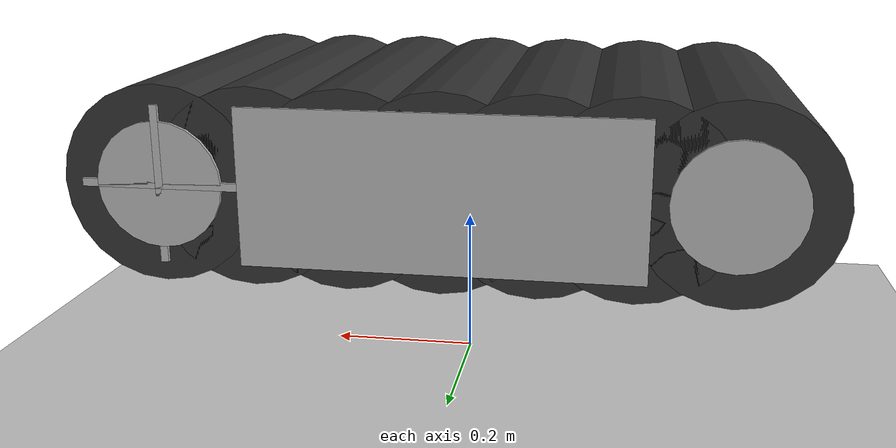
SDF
<?xml version="1.0" ?>
<sdf version="1.6">
    <world name="default">
        <include>
            <uri>model://ground_plane</uri>
        </include>

        <!-- Global light source -->
        <include>
            <uri>model://sun</uri>
        </include>

        <!-- Example track -->
        <include>
            <uri>model://example_track_simple_wheels</uri>
            <pose>0 0 0.3 0 0 0</pose>
        </include>

        <!-- Rigid anchor for the track -->

        <!-- camera angle -->
        <gui fullscreen='0'>
            <camera name='user_camera'>
                <pose>2.0 -1.5 1.0 0.0 0.3 2.45</pose>
                <view_controller>orbit</view_controller>
            </camera>
        </gui>
    </world>
</sdf>

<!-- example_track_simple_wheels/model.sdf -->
<sdf version='1.6'>
  <model name='example_track_simple_wheels'>
    <link name='body'>
      <pose frame=''>0 0 0 0 -0 0</pose>
      <inertial>
        <pose frame=''>-0.058333 0 0 0 -0 0</pose>
        <mass>1.2</mass>
        <inertia>
          <ixx>0.0296633</ixx>
          <ixy>0</ixy>
          <ixz>0</ixz>
          <iyy>0.0452233</iyy>
          <iyz>0</iyz>
          <izz>0.06758</izz>
        </inertia>
      </inertial>
      <collision name='body_collision'>
        <pose frame=''>0 0 0 0 -0 0</pose>
        <geometry>
          <box>
            <size>0.51 0.5 0.2</size>
          </box>
        </geometry>
      </collision>
      <collision name='body_fixed_joint_lump__idler_collision_1'>
        <pose frame=''>-0.35 0 0 1.5708 -0 0</pose>
        <geometry>
          <cylinder>
            <length>0.51</length>
            <radius>0.08</radius>
          </cylinder>
        </geometry>
      </collision>
      <visual name='body_visual'>
        <pose frame=''>0 0 0 0 -0 0</pose>
        <geometry>
          <box>
            <size>0.5 0.51 0.2</size>
          </box>
        </geometry>
      </visual>
      <visual name='body_fixed_joint_lump__idler_visual_1'>
        <pose frame=''>-0.35 0 0 1.5708 -0 0</pose>
        <geometry>
          <cylinder>
            <length>0.51</length>
            <radius>0.08</radius>
          </cylinder>
        </geometry>
      </visual>
    </link>
    <link name='sprocket'>
      <pose frame=''>0.35 0 0 0 -0 0</pose>
      <inertial>
        <pose frame=''>0 0 0 0 -0 0</pose>
        <mass>0.2</mass>
        <inertia>
          <ixx>0.004655</ixx>
          <ixy>0</ixy>
          <ixz>0</ixz>
          <iyy>0.00064</iyy>
          <iyz>0</iyz>
          <izz>0.004655</izz>
        </inertia>
      </inertial>
      <collision name='sprocket_collision'>
        <pose frame=''>0 0 0 1.5708 -0 0</pose>
        <geometry>
          <cylinder>
            <length>0.51</length>
            <radius>0.08</radius>
          </cylinder>
        </geometry>
      </collision>
      <visual name='sprocket_visual'>
        <pose frame=''>0 0 0 1.5708 -0 0</pose>
        <geometry>
          <cylinder>
            <length>0.51</length>
            <radius>0.08</radius>
          </cylinder>
        </geometry>
      </visual>
      <visual name='sprocket_visual_1'>
        <pose frame=''>0 0 0 0 -0 0</pose>
        <geometry>
          <box>
            <size>0.01 0.51 0.2</size>
          </box>
        </geometry>
      </visual>
      <visual name='sprocket_visual_2'>
        <pose frame=''>0 0 0 0 -0 0</pose>
        <geometry>
          <box>
            <size>0.2 0.51 0.01</size>
          </box>
        </geometry>
      </visual>
    </link>
    <joint name='sprocket_axle' type='revolute'>
      <child>sprocket</child>
      <parent>body</parent>
      <axis>
        <xyz>0 1 0</xyz>
        <limit>
          <lower>-1e+16</lower>
          <upper>1e+16</upper>
        </limit>
        <dynamics>
          <spring_reference>0</spring_reference>
          <spring_stiffness>0</spring_stiffness>
        </dynamics>
        <use_parent_model_frame>0</use_parent_model_frame>
      </axis>
    </joint>
    <link name='track_wheel_link0'>
      <pose frame=''>0.35 0 0.125 0 -0 0</pose>
      <inertial>
        <pose frame=''>0 0 -0.125 1.5708 -0 0</pose>
        <mass>0.0571429</mass>
        <inertia>
          <ixx>0.00141369</ixx>
          <ixy>0</ixy>
          <ixz>0</ixz>
          <iyy>0.00141369</iyy>
          <iyz>0</iyz>
          <izz>0.000446429</izz>
        </inertia>
      </inertial>
      <collision name='collision'>
        <pose frame=''>0 0 -0.125 1.5708 -0 0</pose>
        <geometry>
          <cylinder>
            <length>0.5</length>
            <radius>0.125</radius>
          </cylinder>
        </geometry>
        <surface>
          <friction>
            <ode>
              <mu>0.5</mu>
              <mu2>0.5</mu2>
            </ode>
          </friction>
          <contact>
            <ode>
              <min_depth>0.01</min_depth>
            </ode>
          </contact>
        </surface>
      </collision>
      <visual name='visual'>
        <pose frame=''>0 0 -0.125 1.5708 -0 0</pose>
        <geometry>
          <cylinder>
            <length>0.5</length>
            <radius>0.125</radius>
          </cylinder>
        </geometry>
        <material>
          <ambient>0.3 0.1 0.1 1</ambient>
          <diffuse>0.2 0.2 0.2 1</diffuse>
          <specular>0 0 0 1</specular>
          <emissive>0 0 0 1</emissive>
        </material>
      </visual>
    </link>
    <link name='track_wheel_link1'>
      <pose frame=''>0.233333 0 0.125 0 -0 0</pose>
      <inertial>
        <pose frame=''>0 0 -0.125 1.5708 -0 0</pose>
        <mass>0.0571429</mass>
        <inertia>
          <ixx>0.00141369</ixx>
          <ixy>0</ixy>
          <ixz>0</ixz>
          <iyy>0.00141369</iyy>
          <iyz>0</iyz>
          <izz>0.000446429</izz>
        </inertia>
      </inertial>
      <collision name='collision'>
        <pose frame=''>0 0 -0.125 1.5708 -0 0</pose>
        <geometry>
          <cylinder>
            <length>0.5</length>
            <radius>0.125</radius>
          </cylinder>
        </geometry>
        <surface>
          <friction>
            <ode>
              <mu>0.5</mu>
              <mu2>0.5</mu2>
            </ode>
          </friction>
          <contact>
            <ode>
              <min_depth>0.01</min_depth>
            </ode>
          </contact>
        </surface>
      </collision>
      <visual name='visual'>
        <pose frame=''>0 0 -0.125 1.5708 -0 0</pose>
        <geometry>
          <cylinder>
            <length>0.5</length>
            <radius>0.125</radius>
          </cylinder>
        </geometry>
        <material>
          <ambient>0.3 0.1 0.1 1</ambient>
          <diffuse>0.2 0.2 0.2 1</diffuse>
          <specular>0 0 0 1</specular>
          <emissive>0 0 0 1</emissive>
        </material>
      </visual>
    </link>
    <link name='track_wheel_link2'>
      <pose frame=''>0.116667 0 0.125 0 -0 0</pose>
      <inertial>
        <pose frame=''>0 0 -0.125 1.5708 -0 0</pose>
        <mass>0.0571429</mass>
        <inertia>
          <ixx>0.00141369</ixx>
          <ixy>0</ixy>
          <ixz>0</ixz>
          <iyy>0.00141369</iyy>
          <iyz>0</iyz>
          <izz>0.000446429</izz>
        </inertia>
      </inertial>
      <collision name='collision'>
        <pose frame=''>0 0 -0.125 1.5708 -0 0</pose>
        <geometry>
          <cylinder>
            <length>0.5</length>
            <radius>0.125</radius>
          </cylinder>
        </geometry>
        <surface>
          <friction>
            <ode>
              <mu>0.5</mu>
              <mu2>0.5</mu2>
            </ode>
          </friction>
          <contact>
            <ode>
              <min_depth>0.01</min_depth>
            </ode>
          </contact>
        </surface>
      </collision>
      <visual name='visual'>
        <pose frame=''>0 0 -0.125 1.5708 -0 0</pose>
        <geometry>
          <cylinder>
            <length>0.5</length>
            <radius>0.125</radius>
          </cylinder>
        </geometry>
        <material>
          <ambient>0.3 0.1 0.1 1</ambient>
          <diffuse>0.2 0.2 0.2 1</diffuse>
          <specular>0 0 0 1</specular>
          <emissive>0 0 0 1</emissive>
        </material>
      </visual>
    </link>
    <link name='track_wheel_link3'>
      <pose frame=''>0 0 0.125 0 -0 0</pose>
      <inertial>
        <pose frame=''>0 0 -0.125 1.5708 -0 0</pose>
        <mass>0.0571429</mass>
        <inertia>
          <ixx>0.00141369</ixx>
          <ixy>0</ixy>
          <ixz>0</ixz>
          <iyy>0.00141369</iyy>
          <iyz>0</iyz>
          <izz>0.000446429</izz>
        </inertia>
      </inertial>
      <collision name='collision'>
        <pose frame=''>0 0 -0.125 1.5708 -0 0</pose>
        <geometry>
          <cylinder>
            <length>0.5</length>
            <radius>0.125</radius>
          </cylinder>
        </geometry>
        <surface>
          <friction>
            <ode>
              <mu>0.5</mu>
              <mu2>0.5</mu2>
            </ode>
          </friction>
          <contact>
            <ode>
              <min_depth>0.01</min_depth>
            </ode>
          </contact>
        </surface>
      </collision>
      <visual name='visual'>
        <pose frame=''>0 0 -0.125 1.5708 -0 0</pose>
        <geometry>
          <cylinder>
            <length>0.5</length>
            <radius>0.125</radius>
          </cylinder>
        </geometry>
        <material>
          <ambient>0.3 0.1 0.1 1</ambient>
          <diffuse>0.2 0.2 0.2 1</diffuse>
          <specular>0 0 0 1</specular>
          <emissive>0 0 0 1</emissive>
        </material>
      </visual>
    </link>
    <link name='track_wheel_link4'>
      <pose frame=''>-0.116667 0 0.125 0 -0 0</pose>
      <inertial>
        <pose frame=''>0 0 -0.125 1.5708 -0 0</pose>
        <mass>0.0571429</mass>
        <inertia>
          <ixx>0.00141369</ixx>
          <ixy>0</ixy>
          <ixz>0</ixz>
          <iyy>0.00141369</iyy>
          <iyz>0</iyz>
          <izz>0.000446429</izz>
        </inertia>
      </inertial>
      <collision name='collision'>
        <pose frame=''>0 0 -0.125 1.5708 -0 0</pose>
        <geometry>
          <cylinder>
            <length>0.5</length>
            <radius>0.125</radius>
          </cylinder>
        </geometry>
        <surface>
          <friction>
            <ode>
              <mu>0.5</mu>
              <mu2>0.5</mu2>
            </ode>
          </friction>
          <contact>
            <ode>
              <min_depth>0.01</min_depth>
            </ode>
          </contact>
        </surface>
      </collision>
      <visual name='visual'>
        <pose frame=''>0 0 -0.125 1.5708 -0 0</pose>
        <geometry>
          <cylinder>
            <length>0.5</length>
            <radius>0.125</radius>
          </cylinder>
        </geometry>
        <material>
          <ambient>0.3 0.1 0.1 1</ambient>
          <diffuse>0.2 0.2 0.2 1</diffuse>
          <specular>0 0 0 1</specular>
          <emissive>0 0 0 1</emissive>
        </material>
      </visual>
    </link>
    <link name='track_wheel_link5'>
      <pose frame=''>-0.233333 0 0.125 0 -0 0</pose>
      <inertial>
        <pose frame=''>0 0 -0.125 1.5708 -0 0</pose>
        <mass>0.0571429</mass>
        <inertia>
          <ixx>0.00141369</ixx>
          <ixy>0</ixy>
          <ixz>0</ixz>
          <iyy>0.00141369</iyy>
          <iyz>0</iyz>
          <izz>0.000446429</izz>
        </inertia>
      </inertial>
      <collision name='collision'>
        <pose frame=''>0 0 -0.125 1.5708 -0 0</pose>
        <geometry>
          <cylinder>
            <length>0.5</length>
            <radius>0.125</radius>
          </cylinder>
        </geometry>
        <surface>
          <friction>
            <ode>
              <mu>0.5</mu>
              <mu2>0.5</mu2>
            </ode>
          </friction>
          <contact>
            <ode>
              <min_depth>0.01</min_depth>
            </ode>
          </contact>
        </surface>
      </collision>
      <visual name='visual'>
        <pose frame=''>0 0 -0.125 1.5708 -0 0</pose>
        <geometry>
          <cylinder>
            <length>0.5</length>
            <radius>0.125</radius>
          </cylinder>
        </geometry>
        <material>
          <ambient>0.3 0.1 0.1 1</ambient>
          <diffuse>0.2 0.2 0.2 1</diffuse>
          <specular>0 0 0 1</specular>
          <emissive>0 0 0 1</emissive>
        </material>
      </visual>
    </link>
    <link name='track_wheel_link6'>
      <pose frame=''>-0.35 0 0.125 0 -0 0</pose>
      <inertial>
        <pose frame=''>0 0 -0.125 1.5708 -0 0</pose>
        <mass>0.0571429</mass>
        <inertia>
          <ixx>0.00141369</ixx>
          <ixy>0</ixy>
          <ixz>0</ixz>
          <iyy>0.00141369</iyy>
          <iyz>0</iyz>
          <izz>0.000446429</izz>
        </inertia>
      </inertial>
      <collision name='collision'>
        <pose frame=''>0 0 -0.125 1.5708 -0 0</pose>
        <geometry>
          <cylinder>
            <length>0.5</length>
            <radius>0.125</radius>
          </cylinder>
        </geometry>
        <surface>
          <friction>
            <ode>
              <mu>0.5</mu>
              <mu2>0.5</mu2>
            </ode>
          </friction>
          <contact>
            <ode>
              <min_depth>0.01</min_depth>
            </ode>
          </contact>
        </surface>
      </collision>
      <visual name='visual'>
        <pose frame=''>0 0 -0.125 1.5708 -0 0</pose>
        <geometry>
          <cylinder>
            <length>0.5</length>
            <radius>0.125</radius>
          </cylinder>
        </geometry>
        <material>
          <ambient>0.3 0.1 0.1 1</ambient>
          <diffuse>0.2 0.2 0.2 1</diffuse>
          <specular>0 0 0 1</specular>
          <emissive>0 0 0 1</emissive>
        </material>
      </visual>
    </link>
    <joint name='track_wheel_joint0' type='revolute'>
      <child>track_wheel_link0</child>
      <parent>body</parent>
      <pose frame=''>0 0 -0.125 0 -0 0</pose>
      <axis>
        <xyz>0 1 0</xyz>
        <use_parent_model_frame>0</use_parent_model_frame>
        <limit>
          <lower>-1e+16</lower>
          <upper>1e+16</upper>
        </limit>
      </axis>
      <physics>
        <ode>
          <implicit_spring_damper>1</implicit_spring_damper>
        </ode>
      </physics>
    </joint>
    <joint name='track_wheel_joint1' type='revolute'>
      <child>track_wheel_link1</child>
      <parent>body</parent>
      <pose frame=''>0 0 -0.125 0 -0 0</pose>
      <axis>
        <xyz>0 1 0</xyz>
        <use_parent_model_frame>0</use_parent_model_frame>
        <limit>
          <lower>-1e+16</lower>
          <upper>1e+16</upper>
        </limit>
      </axis>
      <physics>
        <ode>
          <implicit_spring_damper>1</implicit_spring_damper>
        </ode>
      </physics>
    </joint>
    <joint name='track_wheel_joint2' type='revolute'>
      <child>track_wheel_link2</child>
      <parent>body</parent>
      <pose frame=''>0 0 -0.125 0 -0 0</pose>
      <axis>
        <xyz>0 1 0</xyz>
        <use_parent_model_frame>0</use_parent_model_frame>
        <limit>
          <lower>-1e+16</lower>
          <upper>1e+16</upper>
        </limit>
      </axis>
      <physics>
        <ode>
          <implicit_spring_damper>1</implicit_spring_damper>
        </ode>
      </physics>
    </joint>
    <joint name='track_wheel_joint3' type='revolute'>
      <child>track_wheel_link3</child>
      <parent>body</parent>
      <pose frame=''>0 0 -0.125 0 -0 0</pose>
      <axis>
        <xyz>0 1 0</xyz>
        <use_parent_model_frame>0</use_parent_model_frame>
        <limit>
          <lower>-1e+16</lower>
          <upper>1e+16</upper>
        </limit>
      </axis>
      <physics>
        <ode>
          <implicit_spring_damper>1</implicit_spring_damper>
        </ode>
      </physics>
    </joint>
    <joint name='track_wheel_joint4' type='revolute'>
      <child>track_wheel_link4</child>
      <parent>body</parent>
      <pose frame=''>0 0 -0.125 0 -0 0</pose>
      <axis>
        <xyz>0 1 0</xyz>
        <use_parent_model_frame>0</use_parent_model_frame>
        <limit>
          <lower>-1e+16</lower>
          <upper>1e+16</upper>
        </limit>
      </axis>
      <physics>
        <ode>
          <implicit_spring_damper>1</implicit_spring_damper>
        </ode>
      </physics>
    </joint>
    <joint name='track_wheel_joint5' type='revolute'>
      <child>track_wheel_link5</child>
      <parent>body</parent>
      <pose frame=''>0 0 -0.125 0 -0 0</pose>
      <axis>
        <xyz>0 1 0</xyz>
        <use_parent_model_frame>0</use_parent_model_frame>
        <limit>
          <lower>-1e+16</lower>
          <upper>1e+16</upper>
        </limit>
      </axis>
      <physics>
        <ode>
          <implicit_spring_damper>1</implicit_spring_damper>
        </ode>
      </physics>
    </joint>
    <joint name='track_wheel_joint6' type='revolute'>
      <child>track_wheel_link6</child>
      <parent>body</parent>
      <pose frame=''>0 0 -0.125 0 -0 0</pose>
      <axis>
        <xyz>0 1 0</xyz>
        <use_parent_model_frame>0</use_parent_model_frame>
        <limit>
          <lower>-1e+16</lower>
          <upper>1e+16</upper>
        </limit>
      </axis>
      <physics>
        <ode>
          <implicit_spring_damper>1</implicit_spring_damper>
        </ode>
      </physics>
    </joint>
    <plugin name='track' filename='libContinuousTrackSimple.so'>
      <sprocket>
        <joint>sprocket_axle</joint>
        <pitch_diameter>0.24</pitch_diameter>
      </sprocket>
      <track>
        <segment>
          <joint>track_wheel_joint0</joint>
          <pitch_diameter>0.24</pitch_diameter>
        </segment>
        <segment>
          <joint>track_wheel_joint1</joint>
          <pitch_diameter>0.24</pitch_diameter>
        </segment>
        <segment>
          <joint>track_wheel_joint2</joint>
          <pitch_diameter>0.24</pitch_diameter>
        </segment>
        <segment>
          <joint>track_wheel_joint3</joint>
          <pitch_diameter>0.24</pitch_diameter>
        </segment>
        <segment>
          <joint>track_wheel_joint4</joint>
          <pitch_diameter>0.24</pitch_diameter>
        </segment>
        <segment>
          <joint>track_wheel_joint5</joint>
          <pitch_diameter>0.24</pitch_diameter>
        </segment>
        <segment>
          <joint>track_wheel_joint6</joint>
          <pitch_diameter>0.24</pitch_diameter>
        </segment>
      </track>
    </plugin>
    <static>0</static>
    <plugin name='gazebo_ros_control' filename='libgazebo_ros_control.so'>
      <robotSimType>gazebo_ros_control/DefaultRobotHWSim</robotSimType>
      <legacyModeNS>0</legacyModeNS>
    </plugin>
  </model>
</sdf>
